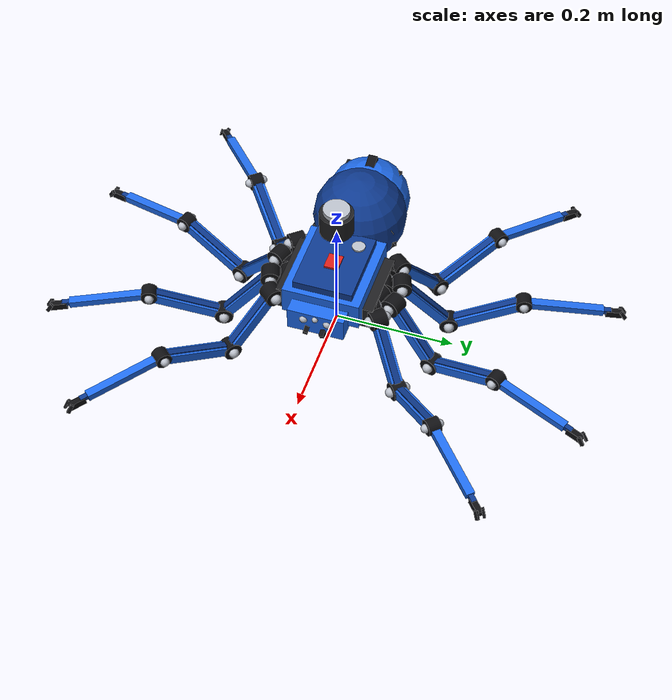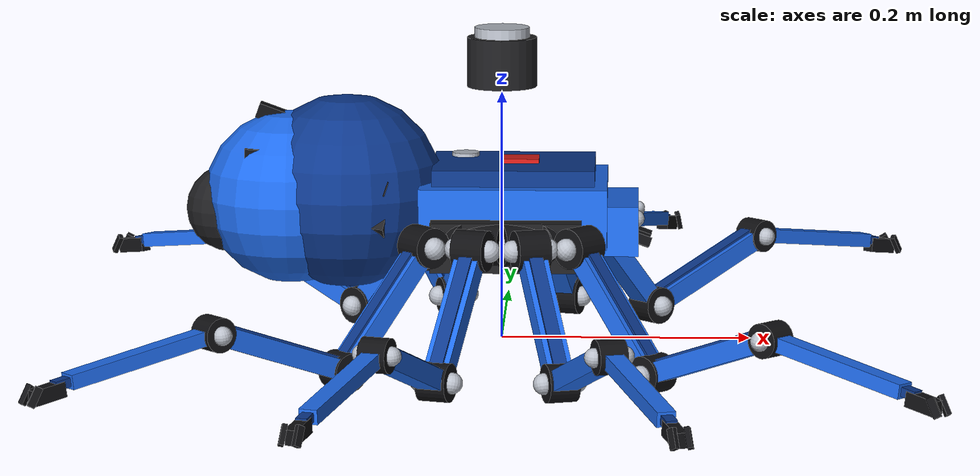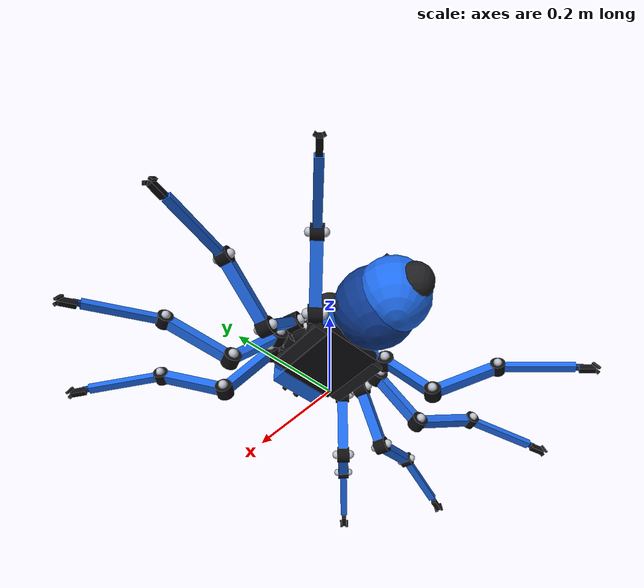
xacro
<?xml version="1.0"?>
<robot name="spider_mech" xmlns:xacro="http://www.ros.org/wiki/xacro">

  <!-- Mechanical spider: blue/black in RViz + Gazebo, teleop via cmd_vel -->

  <xacro:property name="coxa_len"   value="0.032"/>
  <xacro:property name="femur_len"  value="0.120"/>
  <xacro:property name="tibia_len"  value="0.130"/>
  <xacro:property name="tarsus_len" value="0.160"/>
  <xacro:property name="seg_w"      value="0.020"/>
  <xacro:property name="seg_h"      value="0.016"/>
  <xacro:property name="joint_r"    value="0.017"/>
  <xacro:property name="foot_r"     value="0.012"/>
  <xacro:property name="body_z"     value="0.095"/>

  <!-- standing joint offsets (absolute joint positions) -->
  <xacro:property name="femur_neutral" value="0.80"/>
  <xacro:property name="tibia_neutral" value="-1.25"/>
  <xacro:property name="tarsus_fixed"  value="0.50"/>

  <!-- ================= MATERIALS (RViz) ================= -->
  <material name="blue">
    <color rgba="0.12 0.42 0.92 1"/>
  </material>
  <material name="blue_dark">
    <color rgba="0.05 0.22 0.55 1"/>
  </material>
  <material name="black">
    <color rgba="0.06 0.06 0.07 1"/>
  </material>
  <material name="black_matte">
    <color rgba="0.12 0.12 0.13 1"/>
  </material>
  <material name="silver">
    <color rgba="0.72 0.74 0.78 1"/>
  </material>
  <material name="red">
    <color rgba="0.85 0.12 0.10 1"/>
  </material>

  <xacro:macro name="box_inertial" params="m lx ly lz xyz:='0 0 0'">
    <inertial>
      <origin xyz="${xyz}" rpy="0 0 0"/>
      <mass value="${m}"/>
      <inertia
        ixx="${m*(ly*ly + lz*lz)/12.0}"
        iyy="${m*(lx*lx + lz*lz)/12.0}"
        izz="${m*(lx*lx + ly*ly)/12.0}"
        ixy="0" ixz="0" iyz="0"/>
    </inertial>
  </xacro:macro>

  <xacro:macro name="sphere_inertial" params="m radius xyz:='0 0 0'">
    <inertial>
      <origin xyz="${xyz}" rpy="0 0 0"/>
      <mass value="${m}"/>
      <inertia
        ixx="${0.4*m*radius*radius}"
        iyy="${0.4*m*radius*radius}"
        izz="${0.4*m*radius*radius}"
        ixy="0" ixz="0" iyz="0"/>
    </inertial>
  </xacro:macro>

  <!-- Gazebo visual color (URDF materials are ignored by Gazebo) -->
  <xacro:macro name="gazebo_color" params="link r g b">
    <gazebo reference="${link}">
      <visual>
        <material>
          <ambient>${r*0.4} ${g*0.4} ${b*0.4} 1</ambient>
          <diffuse>${r} ${g} ${b} 1</diffuse>
          <specular>0.25 0.25 0.25 1</specular>
          <emissive>0 0 0 1</emissive>
        </material>
      </visual>
      <mu1>0.9</mu1>
      <mu2>0.9</mu2>
      <kp>8e4</kp>
      <kd>80</kd>
    </gazebo>
  </xacro:macro>

  <xacro:macro name="hinge" params="r length">
    <visual>
      <origin xyz="0 0 0" rpy="1.5708 0 0"/>
      <geometry>
        <cylinder radius="${r}" length="${length}"/>
      </geometry>
      <material name="black"/>
    </visual>
    <visual>
      <origin xyz="0 ${length*0.55} 0"/>
      <geometry>
        <sphere radius="${r*0.55}"/>
      </geometry>
      <material name="silver"/>
    </visual>
    <visual>
      <origin xyz="0 ${-length*0.55} 0"/>
      <geometry>
        <sphere radius="${r*0.55}"/>
      </geometry>
      <material name="silver"/>
    </visual>
  </xacro:macro>

  <xacro:macro name="blue_seg" params="length">
    <visual>
      <origin xyz="${length/2} 0 0"/>
      <geometry>
        <box size="${length} ${seg_w} ${seg_h}"/>
      </geometry>
      <material name="blue">
        <color rgba="0.12 0.42 0.92 1"/>
      </material>
    </visual>
    <visual>
      <origin xyz="${length/2} 0 ${seg_h*0.45}"/>
      <geometry>
        <box size="${length*0.92} ${seg_w*0.55} ${seg_h*0.35}"/>
      </geometry>
      <material name="blue_dark">
        <color rgba="0.05 0.22 0.55 1"/>
      </material>
    </visual>
  </xacro:macro>

  <!-- ================= BASE ================= -->
  <link name="base_footprint"/>

  <!-- dummy root inertia link so Gazebo keeps a clean tree -->
  <link name="base_link">
    <xacro:box_inertial m="0.05" lx="0.05" ly="0.05" lz="0.05"/>
  </link>

  <joint name="base_footprint_joint" type="fixed">
    <parent link="base_footprint"/>
    <child link="base_link"/>
    <origin xyz="0 0 0"/>
  </joint>

  <link name="body_link">
    <xacro:box_inertial m="1.2" lx="0.16" ly="0.12" lz="0.05" xyz="0.01 0 0.01"/>
    <!-- flat cephalothorax plate (all 8 legs mount on its sides) -->
    <visual>
      <origin xyz="0.01 0 0.012"/>
      <geometry><box size="0.15 0.13 0.048"/></geometry>
      <material name="blue"/>
    </visual>
    <visual>
      <origin xyz="0.01 0 0.040"/>
      <geometry><box size="0.13 0.10 0.018"/></geometry>
      <material name="blue_dark"/>
    </visual>
    <!-- side coxa rails: legs connect here like the reference -->
    <visual>
      <origin xyz="0.005 0.068 -0.008"/>
      <geometry><box size="0.12 0.028 0.040"/></geometry>
      <material name="black_matte"/>
    </visual>
    <visual>
      <origin xyz="0.005 -0.068 -0.008"/>
      <geometry><box size="0.12 0.028 0.040"/></geometry>
      <material name="black_matte"/>
    </visual>
    <visual>
      <origin xyz="0.0 0 -0.020"/>
      <geometry><box size="0.135 0.11 0.022"/></geometry>
      <material name="black"/>
    </visual>
    <visual>
      <origin xyz="0.015 0 0.050"/>
      <geometry><box size="0.030 0.024 0.005"/></geometry>
      <material name="red"/>
    </visual>
    <visual>
      <origin xyz="-0.030 0.028 0.050"/>
      <geometry><cylinder radius="0.011" length="0.004"/></geometry>
      <material name="silver"/>
    </visual>
    <collision>
      <origin xyz="0.01 0 0.015"/>
      <geometry><box size="0.14 0.11 0.045"/></geometry>
    </collision>
  </link>

  <joint name="base_joint" type="fixed">
    <parent link="base_link"/>
    <child link="body_link"/>
    <origin xyz="0 0 ${body_z}"/>
  </joint>

  <!-- flush face on front of cephalothorax (not a separate head body) -->
  <link name="head_link">
    <xacro:box_inertial m="0.12" lx="0.04" ly="0.09" lz="0.035"/>
    <visual>
      <origin xyz="0.0 0 0.0"/>
      <geometry><box size="0.040 0.095 0.040"/></geometry>
      <material name="blue"/>
    </visual>
    <visual>
      <origin xyz="0.018 0.020 0.006"/>
      <geometry><sphere radius="0.007"/></geometry>
      <material name="silver"/>
    </visual>
    <visual>
      <origin xyz="0.018 -0.020 0.006"/>
      <geometry><sphere radius="0.007"/></geometry>
      <material name="silver"/>
    </visual>
    <visual>
      <origin xyz="0.020 0 0.012"/>
      <geometry><sphere radius="0.005"/></geometry>
      <material name="silver"/>
    </visual>
    <visual>
      <origin xyz="0.022 0.014 -0.012" rpy="0.25 0.35 0"/>
      <geometry><box size="0.016 0.008 0.008"/></geometry>
      <material name="black"/>
    </visual>
    <visual>
      <origin xyz="0.022 -0.014 -0.012" rpy="-0.25 0.35 0"/>
      <geometry><box size="0.016 0.008 0.008"/></geometry>
      <material name="black"/>
    </visual>
    <collision>
      <origin xyz="0 0 0"/>
      <geometry><box size="0.038 0.09 0.035"/></geometry>
    </collision>
  </link>

  <joint name="head_joint" type="fixed">
    <parent link="body_link"/>
    <child link="head_link"/>
    <origin xyz="0.090 0 0.0"/>
  </joint>

  <link name="abdomen_link">
    <xacro:sphere_inertial m="0.6" radius="0.07" xyz="-0.04 0 0.02"/>
    <visual>
      <origin xyz="-0.02 0 0.01"/>
      <geometry><sphere radius="0.078"/></geometry>
      <material name="blue_dark"/>
    </visual>
    <visual>
      <origin xyz="-0.065 0 0.005"/>
      <geometry><sphere radius="0.070"/></geometry>
      <material name="blue"/>
    </visual>
    <visual>
      <origin xyz="-0.035 0 0.055" rpy="0 0.35 0"/>
      <geometry><box size="0.12 0.015 0.012"/></geometry>
      <material name="black"/>
    </visual>
    <visual>
      <origin xyz="-0.035 0.045 0.030" rpy="0.4 0.2 0.3"/>
      <geometry><box size="0.11 0.014 0.012"/></geometry>
      <material name="black"/>
    </visual>
    <visual>
      <origin xyz="-0.035 -0.045 0.030" rpy="-0.4 0.2 -0.3"/>
      <geometry><box size="0.11 0.014 0.012"/></geometry>
      <material name="black"/>
    </visual>
    <visual>
      <origin xyz="-0.035 0.055 -0.005" rpy="0.7 0.1 0.2"/>
      <geometry><box size="0.10 0.013 0.011"/></geometry>
      <material name="black_matte"/>
    </visual>
    <visual>
      <origin xyz="-0.035 -0.055 -0.005" rpy="-0.7 0.1 -0.2"/>
      <geometry><box size="0.10 0.013 0.011"/></geometry>
      <material name="black_matte"/>
    </visual>
    <visual>
      <origin xyz="-0.090 0 0.015"/>
      <geometry><box size="0.018 0.095 0.070"/></geometry>
      <material name="black"/>
    </visual>
    <visual>
      <origin xyz="-0.115 0 -0.005"/>
      <geometry><sphere radius="0.035"/></geometry>
      <material name="black_matte"/>
    </visual>
    <collision>
      <origin xyz="-0.04 0 0.025"/>
      <geometry><sphere radius="0.065"/></geometry>
    </collision>
  </link>

  <joint name="abdomen_joint" type="fixed">
    <parent link="body_link"/>
    <child link="abdomen_link"/>
    <origin xyz="-0.105 0 0.015"/>
  </joint>

  <!-- ================= LEG (3 actuated DOF + fixed tarsus) ================= -->
  <xacro:macro name="leg" params="prefix x y yaw">

    <link name="${prefix}_coxa">
      <xacro:box_inertial m="0.04" lx="${coxa_len}" ly="${seg_w}" lz="${seg_h}" xyz="${coxa_len/2} 0 0"/>
      <xacro:hinge r="${joint_r}" length="0.028"/>
      <visual>
        <origin xyz="${coxa_len/2} 0 0"/>
        <geometry><box size="${coxa_len} ${seg_w*0.9} ${seg_h*0.9}"/></geometry>
        <material name="black_matte"/>
      </visual>
    </link>

    <joint name="${prefix}_hip_yaw_joint" type="revolute">
      <parent link="body_link"/>
      <child link="${prefix}_coxa"/>
      <!-- all hips on cephalothorax side rails -->
      <origin xyz="${x} ${y} -0.005" rpy="0 0 ${yaw}"/>
      <axis xyz="0 0 1"/>
      <limit lower="-1.0" upper="1.0" effort="30" velocity="3.0"/>
      <dynamics damping="1.0" friction="0.2"/>
    </joint>

    <link name="${prefix}_femur">
      <xacro:box_inertial m="0.05" lx="${femur_len}" ly="${seg_w}" lz="${seg_h}" xyz="${femur_len/2} 0 0"/>
      <xacro:hinge r="${joint_r*0.95}" length="0.026"/>
      <xacro:blue_seg length="${femur_len}"/>
    </link>

    <joint name="${prefix}_femur_pitch_joint" type="revolute">
      <parent link="${prefix}_coxa"/>
      <child link="${prefix}_femur"/>
      <origin xyz="${coxa_len} 0 0" rpy="0 0 0"/>
      <axis xyz="0 1 0"/>
      <limit lower="0.2" upper="1.5" effort="30" velocity="3.0"/>
      <dynamics damping="1.0" friction="0.2"/>
    </joint>

    <link name="${prefix}_tibia">
      <xacro:box_inertial m="0.045" lx="${tibia_len}" ly="${seg_w}" lz="${seg_h}" xyz="${tibia_len/2} 0 0"/>
      <xacro:hinge r="${joint_r*0.90}" length="0.024"/>
      <xacro:blue_seg length="${tibia_len}"/>
    </link>

    <joint name="${prefix}_tibia_pitch_joint" type="revolute">
      <parent link="${prefix}_femur"/>
      <child link="${prefix}_tibia"/>
      <origin xyz="${femur_len} 0 0" rpy="0 0 0"/>
      <axis xyz="0 1 0"/>
      <limit lower="-2.0" upper="-0.4" effort="30" velocity="3.0"/>
      <dynamics damping="1.0" friction="0.2"/>
    </joint>

    <link name="${prefix}_tarsus">
      <xacro:box_inertial m="0.035" lx="${tarsus_len}" ly="${seg_w*0.6}" lz="${seg_h*0.6}" xyz="${tarsus_len/2} 0 0"/>
      <xacro:hinge r="${joint_r*0.80}" length="0.022"/>
      <visual>
        <origin xyz="${tarsus_len*0.42} 0 0"/>
        <geometry><box size="${tarsus_len*0.84} ${seg_w*0.72} ${seg_h*0.72}"/></geometry>
        <material name="blue"/>
      </visual>
      <visual>
        <origin xyz="${tarsus_len*0.78} 0 0"/>
        <geometry><box size="${tarsus_len*0.28} ${seg_w*0.45} ${seg_h*0.45}"/></geometry>
        <material name="blue_dark"/>
      </visual>
      <visual>
        <origin xyz="${tarsus_len*0.96} 0 -0.004"/>
        <geometry><box size="0.028 0.010 0.012"/></geometry>
        <material name="black"/>
      </visual>
      <visual>
        <origin xyz="${tarsus_len + 0.008} 0.006 -0.002" rpy="0.5 0.9 0"/>
        <geometry><box size="0.016 0.004 0.006"/></geometry>
        <material name="black"/>
      </visual>
      <visual>
        <origin xyz="${tarsus_len + 0.008} -0.006 -0.002" rpy="-0.5 0.9 0"/>
        <geometry><box size="0.016 0.004 0.006"/></geometry>
        <material name="black"/>
      </visual>
      <collision name="${prefix}_foot">
        <origin xyz="${tarsus_len} 0 0"/>
        <geometry><sphere radius="${foot_r}"/></geometry>
      </collision>
    </link>

    <joint name="${prefix}_tarsus_joint" type="fixed">
      <parent link="${prefix}_tibia"/>
      <child link="${prefix}_tarsus"/>
      <origin xyz="${tibia_len} 0 0" rpy="0 ${tarsus_fixed} 0"/>
    </joint>

    <xacro:gazebo_color link="${prefix}_coxa" r="0.12" g="0.12" b="0.13"/>
    <xacro:gazebo_color link="${prefix}_femur" r="0.12" g="0.42" b="0.92"/>
    <xacro:gazebo_color link="${prefix}_tibia" r="0.12" g="0.42" b="0.92"/>
    <xacro:gazebo_color link="${prefix}_tarsus" r="0.10" g="0.35" b="0.80"/>

  </xacro:macro>

  <!-- All 8 legs on cephalothorax sides (like reference image), fanned out -->
  <xacro:leg prefix="lf"  x="0.040"  y="0.068" yaw="0.75"/>
  <xacro:leg prefix="lfm" x="0.015"  y="0.075" yaw="1.25"/>
  <xacro:leg prefix="lrm" x="-0.010" y="0.075" yaw="1.90"/>
  <xacro:leg prefix="lr"  x="-0.035" y="0.068" yaw="2.45"/>
  <xacro:leg prefix="rf"  x="0.040"  y="-0.068" yaw="-0.75"/>
  <xacro:leg prefix="rfm" x="0.015"  y="-0.075" yaw="-1.25"/>
  <xacro:leg prefix="rrm" x="-0.010" y="-0.075" yaw="-1.90"/>
  <xacro:leg prefix="rr"  x="-0.035" y="-0.068" yaw="-2.45"/>

  <xacro:gazebo_color link="body_link" r="0.12" g="0.42" b="0.92"/>
  <xacro:gazebo_color link="head_link" r="0.10" g="0.38" b="0.88"/>
  <xacro:gazebo_color link="abdomen_link" r="0.08" g="0.28" b="0.70"/>

  <!-- ================= LIDAR (for mapping) ================= -->
  <xacro:arg name="include_lidar" default="true"/>
  <xacro:if value="$(arg include_lidar)">

  <link name="lidar_link">
    <xacro:box_inertial m="0.08" lx="0.06" ly="0.06" lz="0.05" xyz="0 0 0"/>
    <visual>
      <origin xyz="0 0 0.01"/>
      <geometry><cylinder radius="0.028" length="0.04"/></geometry>
      <material name="black_matte"/>
    </visual>
    <visual>
      <origin xyz="0 0 0.032"/>
      <geometry><cylinder radius="0.022" length="0.012"/></geometry>
      <material name="silver"/>
    </visual>
    <collision>
      <origin xyz="0 0 0.01"/>
      <geometry><cylinder radius="0.028" length="0.045"/></geometry>
    </collision>
  </link>

  <joint name="lidar_joint" type="fixed">
    <parent link="body_link"/>
    <child link="lidar_link"/>
    <origin xyz="0.0 0 0.12" rpy="0 0 0"/>
  </joint>

  <xacro:gazebo_color link="lidar_link" r="0.15" g="0.15" b="0.16"/>

  <gazebo reference="lidar_link">
    <sensor name="spider_lidar" type="ray">
      <always_on>true</always_on>
      <visualize>true</visualize>
      <update_rate>10</update_rate>
      <pose>0 0 0 0 0 0</pose>
      <ray>
        <scan>
          <horizontal>
            <samples>360</samples>
            <resolution>1</resolution>
            <min_angle>-3.14159</min_angle>
            <max_angle>3.14159</max_angle>
          </horizontal>
        </scan>
        <range>
          <min>0.35</min>
          <max>12.0</max>
          <resolution>0.01</resolution>
        </range>
        <noise>
          <type>gaussian</type>
          <mean>0.0</mean>
          <stddev>0.01</stddev>
        </noise>
      </ray>
      <plugin name="spider_lidar_plugin" filename="libgazebo_ros_ray_sensor.so">
        <ros>
          <remapping>~/out:=scan</remapping>
        </ros>
        <output_type>sensor_msgs/LaserScan</output_type>
        <frame_name>lidar_link</frame_name>
      </plugin>
    </sensor>
  </gazebo>

  </xacro:if>

  <gazebo>
    <selfCollide>false</selfCollide>
    <plugin name="spider_gazebo_gait_plugin" filename="libspider_gazebo_gait_plugin.so">
      <speed_hz>0.9</speed_hz>
      <hip_swing>0.30</hip_swing>
      <femur_lift>0.25</femur_lift>
      <tibia_lift>0.28</tibia_lift>
      <motion_timeout>0.6</motion_timeout>
      <linear_scale>0.50</linear_scale>
      <angular_scale>1.2</angular_scale>
    </plugin>
  </gazebo>

</robot>
